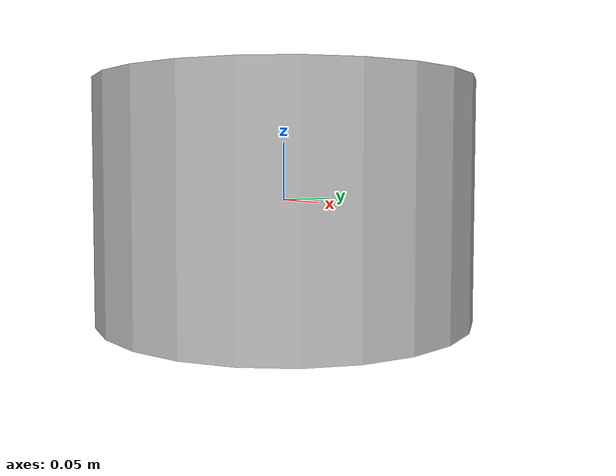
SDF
<?xml version='1.0'?>
<sdf version='1.6'>
    <model name="obstacle4">
      <link name="link_obstacle4">
        <collision name="collision">
          <geometry>
            <cylinder>
              <radius>0.16</radius>
              <length>0.20</length>
            </cylinder>
          </geometry>
        </collision>

        <visual name="visual">
          <geometry>
            <cylinder>
              <radius>0.16</radius>
              <length>0.20</length>
            </cylinder>
          </geometry>
        </visual>
      </link>
      <plugin name="p3d_base_controller_obstacle4" filename="libgazebo_ros_p3d.so">
        <ros>
          <namespace>/obstacle</namespace>
          <remapping>odom:=odom</remapping>
        </ros>
        <always_on>true</always_on>
        <update_rate>50.0</update_rate>
        <body_name>link_obstacle4</body_name>
        <topic_name>odom_obs</topic_name>
        <gaussian_noise>0.0</gaussian_noise>
        <frame_name>world</frame_name>
        <xyz_offset>0 0 0</xyz_offset>
        <rpy_offset>0 0 0</rpy_offset>
      </plugin>
    </model>
</sdf>
